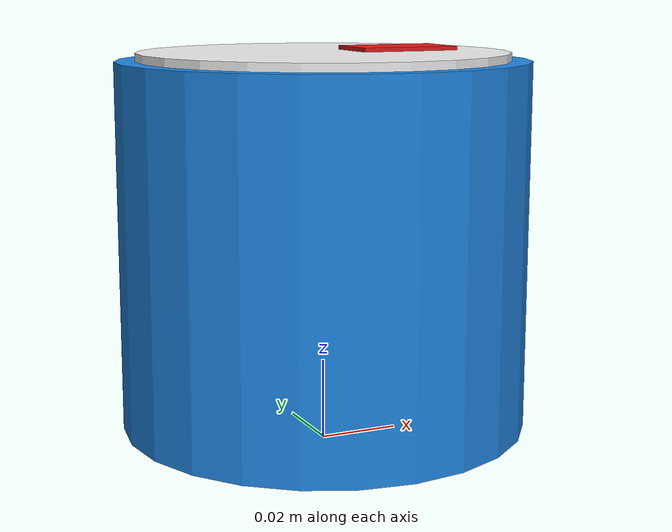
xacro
<?xml version="1.0"?>
<robot xmlns:xacro="http://www.ros.org/wiki/xacro">

  <!-- Physical Properties from Research Proposal -->
  <xacro:property name="chassis_radius" value="0.050"/>  <!-- 100mm diameter -->
  <xacro:property name="chassis_height" value="0.090"/>  <!-- 90mm cylinder height + ground clearance -->
  <xacro:property name="chassis_mass" value="0.400"/>    <!-- 400g PLA Chassis + Pico + Battery -->

  <!-- Base footprint: Projection on the ground plane -->
  <link name="base_footprint"/>

  <joint name="base_joint" type="fixed">
    <parent link="base_footprint"/>
    <child link="base_link"/>
    <origin xyz="0 0 0.025" rpy="0 0 0"/> <!-- Axle center at z = 25mm (wheel radius) -->
  </joint>

  <!-- Base Link: Axle center is the origin (0, 0, 0) -->
  <link name="base_link">
    <visual>
      <!-- Cylindrical open-top chassis shell -->
      <origin xyz="0 0 0.025" rpy="0 0 0"/>
      <geometry>
        <cylinder radius="${chassis_radius}" length="${chassis_height}"/>
      </geometry>
      <material name="pla_cyan">
        <color rgba="0.12 0.53 0.89 0.95"/>
      </material>
    </visual>

    <!-- Top plate mounting sigil for overhead tracking camera -->
    <visual>
      <origin xyz="0 0 ${chassis_height/2 + 0.026}" rpy="0 0 0"/>
      <geometry>
        <cylinder radius="0.045" length="0.002"/>
      </geometry>
      <material name="sigil_plate">
        <color rgba="0.95 0.95 0.95 1.0"/>
      </material>
    </visual>

    <!-- Visual tracking pattern / orientation mark on top -->
    <visual>
      <origin xyz="0.020 0 ${chassis_height/2 + 0.027}" rpy="0 0 0"/>
      <geometry>
        <box size="0.025 0.015 0.002"/>
      </geometry>
      <material name="sigil_direction_marker">
        <color rgba="0.9 0.1 0.1 1.0"/>
      </material>
    </visual>

    <collision>
      <origin xyz="0 0 0.025" rpy="0 0 0"/>
      <geometry>
        <cylinder radius="${chassis_radius}" length="${chassis_height}"/>
      </geometry>
    </collision>

    <inertial>
      <origin xyz="0 0 0.020" rpy="0 0 0"/>
      <mass value="${chassis_mass}"/>
      <inertia
        ixx="${(1.0/12.0) * chassis_mass * (3*chassis_radius*chassis_radius + chassis_height*chassis_height)}"
        ixy="0.0"
        ixz="0.0"
        iyy="${(1.0/12.0) * chassis_mass * (3*chassis_radius*chassis_radius + chassis_height*chassis_height)}"
        iyz="0.0"
        izz="${(1.0/2.0) * chassis_mass * (chassis_radius*chassis_radius)}"/>
    </inertial>
  </link>

</robot>
